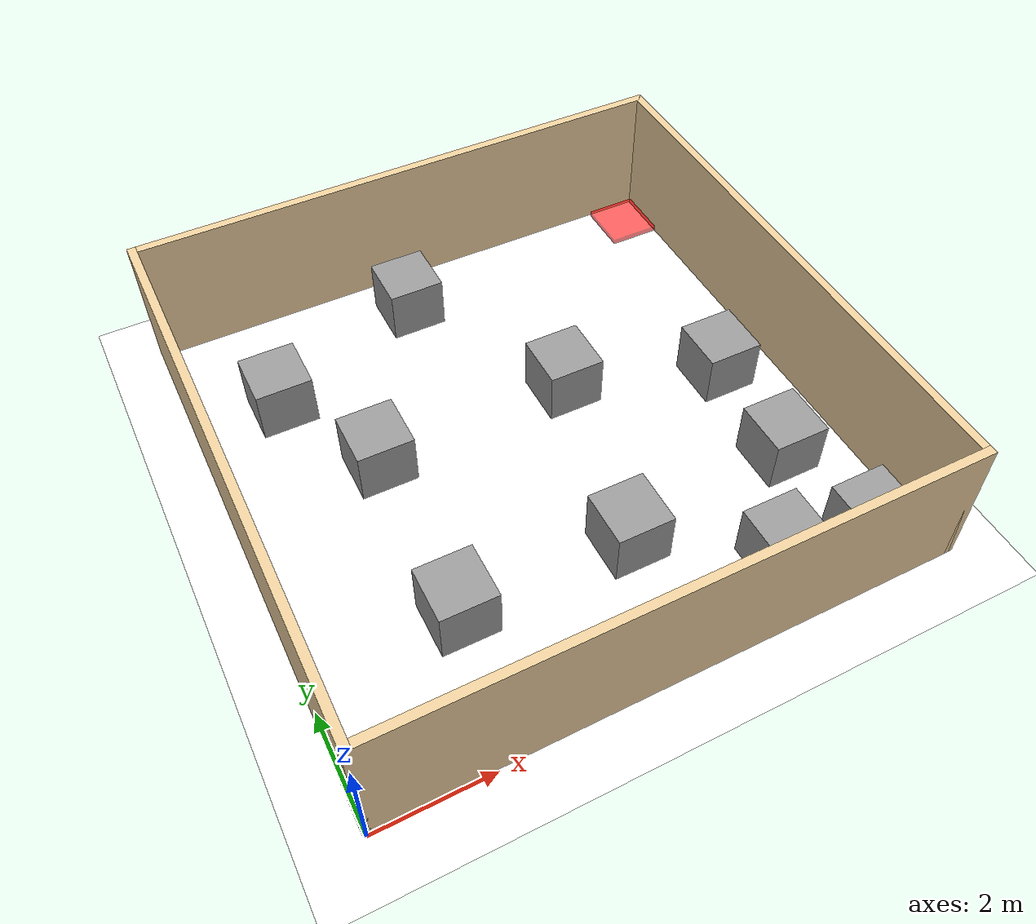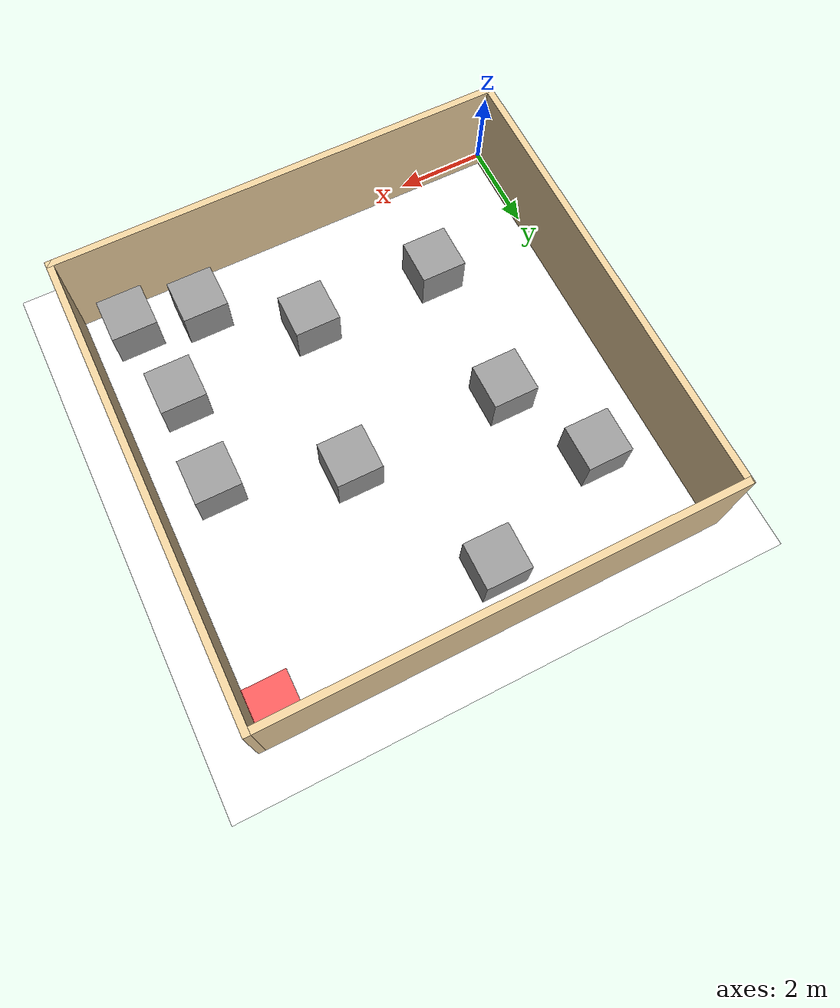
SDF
<sdf version="1.7">
 <world name="default">
  <light name="sun" type="directional">
   <pose>0 0 10 0 -0 0</pose>
   <diffuse>0.8 0.8 0.8 1</diffuse>
   <specular>0.2 0.2 0.2 1</specular>
   <attenuation>
    <range>1000</range>
    <constant>0.9</constant>
    <linear>0.01</linear>
    <quadratic>0.001</quadratic>
   </attenuation>
   <direction>-0.5 0.1 -0.9</direction>
   <spot><inner_angle>0</inner_angle><outer_angle>0</outer_angle><falloff>0</falloff></spot>
  </light>
  <gravity>0 0 -9.8</gravity>
  <magnetic_field>6e-06 2.3e-05 -4.2e-05</magnetic_field>
  <atmosphere type="adiabatic"/>
  <physics type="ode">
   <max_step_size>0.001</max_step_size>
   <real_time_factor>1</real_time_factor>
   <real_time_update_rate>1000</real_time_update_rate>
  </physics>
  <scene><ambient>0.4 0.4 0.4 1</ambient><background>0.7 0.7 0.7 1</background><shadows>1</shadows></scene>
  <audio><device>default</device></audio>
  <spherical_coordinates>
   <surface_model>EARTH_WGS84</surface_model>
   <latitude_deg>0</latitude_deg>
   <longitude_deg>0</longitude_deg>
   <elevation>0</elevation>
   <heading_deg>0</heading_deg>
  </spherical_coordinates>
  <model name="WALL">
   <pose>5.02351 5.11424 0 0 -0 0</pose>
   <link name="Wall_0">
    <collision name="Wall_0_Collision">
     <geometry><box><size>10.15 0.15 2.5</size></box></geometry>
     <pose>0 0 1.25 0 -0 0</pose>
    </collision>
    <visual name="Wall_0_Visual">
     <pose>0 0 1.25 0 -0 0</pose>
     <geometry><box><size>10.15 0.15 2.5</size></box></geometry>
     <material>
      <script><uri>file://media/materials/scripts/gazebo.material</uri><name>Gazebo/Grey</name></script>
      <ambient>0.921569 0.807843 0.615686 1</ambient>
     </material>
     <meta><layer>0</layer></meta>
    </visual>
    <pose>-5 -0 0 0 -0 1.5708</pose>
   </link>
   <link name="Wall_2">
    <collision name="Wall_2_Collision">
     <geometry><box><size>10.15 0.15 2.5</size></box></geometry>
     <pose>0 0 1.25 0 -0 0</pose>
    </collision>
    <visual name="Wall_2_Visual">
     <pose>0 0 1.25 0 -0 0</pose>
     <geometry><box><size>10.15 0.15 2.5</size></box></geometry>
     <material>
      <script><uri>file://media/materials/scripts/gazebo.material</uri><name>Gazebo/Grey</name></script>
      <ambient>0.921569 0.807843 0.615686 1</ambient>
     </material>
     <meta><layer>0</layer></meta>
    </visual>
    <pose>-0 -5 0 0 -0 0</pose>
   </link>
   <link name="Wall_4">
    <collision name="Wall_4_Collision">
     <geometry><box><size>10.15 0.15 2.5</size></box></geometry>
     <pose>0 0 1.25 0 -0 0</pose>
    </collision>
    <visual name="Wall_4_Visual">
     <pose>0 0 1.25 0 -0 0</pose>
     <geometry><box><size>10.15 0.15 2.5</size></box></geometry>
     <material>
      <script><uri>file://media/materials/scripts/gazebo.material</uri><name>Gazebo/Grey</name></script>
      <ambient>0.921569 0.807843 0.615686 1</ambient>
     </material>
     <meta><layer>0</layer></meta>
    </visual>
    <pose>5 -0 0 0 -0 1.5708</pose>
   </link>
   <link name="Wall_6">
    <collision name="Wall_6_Collision">
     <geometry><box><size>10.15 0.15 2.5</size></box></geometry>
     <pose>0 0 1.25 0 -0 0</pose>
    </collision>
    <visual name="Wall_6_Visual">
     <pose>0 0 1.25 0 -0 0</pose>
     <geometry><box><size>10.15 0.15 2.5</size></box></geometry>
     <material>
      <script><uri>file://media/materials/scripts/gazebo.material</uri><name>Gazebo/Grey</name></script>
      <ambient>0.921569 0.807843 0.615686 1</ambient>
     </material>
     <meta><layer>0</layer></meta>
    </visual>
    <pose>-0 5 0 0 -0 3.14159</pose>
   </link>
   <static>1</static>
  </model>
  <model name="unit_box">
   <pose>2.5152 2.4998 0.499995 -1e-05 -0 -0</pose>
   <link name="link">
    <inertial>
     <mass>1</mass>
     <inertia>
      <ixx>0.166667</ixx>
      <ixy>0</ixy>
      <ixz>0</ixz>
      <iyy>0.166667</iyy>
      <iyz>0</iyz>
      <izz>0.166667</izz>
     </inertia>
    </inertial>
    <collision name="collision"><geometry><box><size>1 1 1</size></box></geometry></collision>
    <visual name="visual">
     <geometry><box><size>1 1 1</size></box></geometry>
     <material>
      <script><name>Gazebo/Grey</name><uri>file://media/materials/scripts/gazebo.material</uri></script>
     </material>
    </visual>
   </link>
  </model>
  <model name="unit_box_0">
   <pose>5.51366 2.50629 0.499995 -1e-05 -0 -0</pose>
   <link name="link">
    <inertial>
     <mass>1</mass>
     <inertia>
      <ixx>0.166667</ixx>
      <ixy>0</ixy>
      <ixz>0</ixz>
      <iyy>0.166667</iyy>
      <iyz>0</iyz>
      <izz>0.166667</izz>
     </inertia>
    </inertial>
    <collision name="collision"><geometry><box><size>1 1 1</size></box></geometry></collision>
    <visual name="visual">
     <geometry><box><size>1 1 1</size></box></geometry>
     <material>
      <script><name>Gazebo/Grey</name><uri>file://media/materials/scripts/gazebo.material</uri></script>
     </material>
    </visual>
   </link>
  </model>
  <model name="unit_box_1">
   <pose>2.553 5.78275 0.499995 1e-05 -0 0</pose>
   <link name="link">
    <inertial>
     <mass>1</mass>
     <inertia>
      <ixx>0.166667</ixx>
      <ixy>0</ixy>
      <ixz>0</ixz>
      <iyy>0.166667</iyy>
      <iyz>0</iyz>
      <izz>0.166667</izz>
     </inertia>
    </inertial>
    <collision name="collision"><geometry><box><size>1 1 1</size></box></geometry></collision>
    <visual name="visual">
     <geometry><box><size>1 1 1</size></box></geometry>
     <material>
      <script><name>Gazebo/Grey</name><uri>file://media/materials/scripts/gazebo.material</uri></script>
     </material>
    </visual>
   </link>
  </model>
  <model name="unit_box_2">
   <pose>8.81765 5.01989 0.499995 0 -1e-05 0</pose>
   <link name="link">
    <inertial>
     <mass>1</mass>
     <inertia>
      <ixx>0.166667</ixx>
      <ixy>0</ixy>
      <ixz>0</ixz>
      <iyy>0.166667</iyy>
      <iyz>0</iyz>
      <izz>0.166667</izz>
     </inertia>
    </inertial>
    <collision name="collision"><geometry><box><size>1 1 1</size></box></geometry></collision>
    <visual name="visual">
     <geometry><box><size>1 1 1</size></box></geometry>
     <material>
      <script><name>Gazebo/Grey</name><uri>file://media/materials/scripts/gazebo.material</uri></script>
     </material>
    </visual>
   </link>
  </model>
  <model name="unit_box_3">
   <pose>6.16047 5.92255 0.499995 -1e-05 -0 -0</pose>
   <link name="link">
    <inertial>
     <mass>1</mass>
     <inertia>
      <ixx>0.166667</ixx>
      <ixy>0</ixy>
      <ixz>0</ixz>
      <iyy>0.166667</iyy>
      <iyz>0</iyz>
      <izz>0.166667</izz>
     </inertia>
    </inertial>
    <collision name="collision"><geometry><box><size>1 1 1</size></box></geometry></collision>
    <visual name="visual">
     <geometry><box><size>1 1 1</size></box></geometry>
     <material>
      <script><name>Gazebo/Grey</name><uri>file://media/materials/scripts/gazebo.material</uri></script>
     </material>
    </visual>
   </link>
  </model>
  <model name="unit_box_4">
   <pose>4.49221 9.0214 0.499995 1e-05 -0 0</pose>
   <link name="link">
    <inertial>
     <mass>1</mass>
     <inertia>
      <ixx>0.166667</ixx>
      <ixy>0</ixy>
      <ixz>0</ixz>
      <iyy>0.166667</iyy>
      <iyz>0</iyz>
      <izz>0.166667</izz>
     </inertia>
    </inertial>
    <collision name="collision"><geometry><box><size>1 1 1</size></box></geometry></collision>
    <visual name="visual">
     <geometry><box><size>1 1 1</size></box></geometry>
     <material>
      <script><name>Gazebo/Grey</name><uri>file://media/materials/scripts/gazebo.material</uri></script>
     </material>
    </visual>
   </link>
  </model>
  <model name="unit_box_5">
   <pose>1.51687 7.79386 0.499995 1e-05 -0 0</pose>
   <link name="link">
    <inertial>
     <mass>1</mass>
     <inertia>
      <ixx>0.166667</ixx>
      <ixy>0</ixy>
      <ixz>0</ixz>
      <iyy>0.166667</iyy>
      <iyz>0</iyz>
      <izz>0.166667</izz>
     </inertia>
    </inertial>
    <collision name="collision"><geometry><box><size>1 1 1</size></box></geometry></collision>
    <visual name="visual">
     <geometry><box><size>1 1 1</size></box></geometry>
     <material>
      <script><name>Gazebo/Grey</name><uri>file://media/materials/scripts/gazebo.material</uri></script>
     </material>
    </visual>
   </link>
  </model>
  <model name="ground_plane">
   <static>1</static>
   <link name="link">
    <collision name="collision">
     <geometry><plane><normal>0 0 1</normal><size>100 100</size></plane></geometry>
     <surface><friction><ode><mu>100</mu><mu2>50</mu2></ode></friction></surface>
    </collision>
    <visual name="visual">
     <cast_shadows>0</cast_shadows>
     <geometry><plane><normal>0 0 1</normal><size>100 100</size></plane></geometry>
     <material><ambient>1 1 1 1</ambient><diffuse>1 1 1 1</diffuse></material>
    </visual>
   </link>
   <pose>-1.76997 -0.846079 0 0 -0 0</pose>
  </model>
  <model name="goal_region">
   <static>1</static>
   <pose>9.5 9.5 0.05 0 -0 0</pose>
   <link name="link">
    <visual name="visual">
     <geometry><box><size>1 1 0.1</size></box></geometry>
     <material><ambient>1 0 0 0.6</ambient><diffuse>1 0 0 0.6</diffuse></material>
    </visual>
   </link>
  </model>
  <model name="start_marker"><static>1</static><pose>1 1 0 0 -0 0</pose></model>
  <model name="unit_box_6">
   <pose>9.02968 0.915294 0.499995 -1e-05 -0 -0</pose>
   <link name="link">
    <inertial>
     <mass>1</mass>
     <inertia>
      <ixx>0.166667</ixx>
      <ixy>0</ixy>
      <ixz>0</ixz>
      <iyy>0.166667</iyy>
      <iyz>0</iyz>
      <izz>0.166667</izz>
     </inertia>
    </inertial>
    <collision name="collision"><geometry><box><size>1 1 1</size></box></geometry></collision>
    <visual name="visual">
     <geometry><box><size>1 1 1</size></box></geometry>
     <material>
      <script><name>Gazebo/Grey</name><uri>file://media/materials/scripts/gazebo.material</uri></script>
     </material>
    </visual>
   </link>
  </model>
  <model name="unit_box_7">
   <pose>7.51194 1.15211 0.499995 0 1e-05 0</pose>
   <link name="link">
    <inertial>
     <mass>1</mass>
     <inertia>
      <ixx>0.166667</ixx>
      <ixy>0</ixy>
      <ixz>0</ixz>
      <iyy>0.166667</iyy>
      <iyz>0</iyz>
      <izz>0.166667</izz>
     </inertia>
    </inertial>
    <collision name="collision"><geometry><box><size>1 1 1</size></box></geometry></collision>
    <visual name="visual">
     <geometry><box><size>1 1 1</size></box></geometry>
     <material>
      <script><name>Gazebo/Grey</name><uri>file://media/materials/scripts/gazebo.material</uri></script>
     </material>
    </visual>
   </link>
  </model>
  <model name="unit_box_8">
   <pose>8.71742 2.91796 0.5 0 -0 0</pose>
   <link name="link">
    <inertial>
     <mass>1</mass>
     <inertia>
      <ixx>0.166667</ixx>
      <ixy>0</ixy>
      <ixz>0</ixz>
      <iyy>0.166667</iyy>
      <iyz>0</iyz>
      <izz>0.166667</izz>
     </inertia>
    </inertial>
    <collision name="collision"><geometry><box><size>1 1 1</size></box></geometry></collision>
    <visual name="visual">
     <geometry><box><size>1 1 1</size></box></geometry>
     <material>
      <script><name>Gazebo/Grey</name><uri>file://media/materials/scripts/gazebo.material</uri></script>
     </material>
    </visual>
   </link>
  </model>
 </world>
</sdf>
